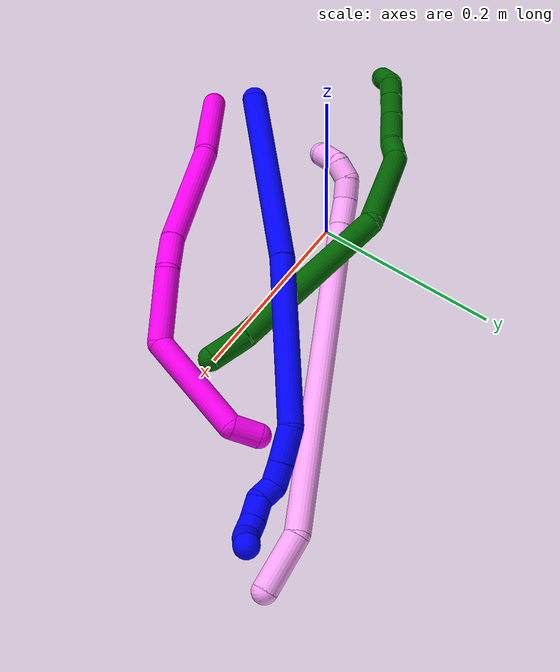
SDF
<sdf version="1.7">
 <world name="default">
  <model name="photoneo_s_sensor">
   <static>1</static>
   <pose>0 0 2 1.57079 1.57079 3.14159</pose>
   <link name="link">
    <inertial><mass>0.1</mass></inertial>
    <sensor name="sensor" type="depth">
     <update_rate>30</update_rate>
     <camera>
      <horizontal_fov>1.22</horizontal_fov>
      <image><width>1920</width><height>1200</height><format>B8G8R8</format></image>
      <clip><near>0.1</near><far>4</far></clip>
      <depth_camera><output>points</output></depth_camera>
     </camera>
     <plugin name="camera_plugin" filename="libgazebo_ros_depth_camera.so">
      <baseline>0.2</baseline>
      <alwaysOn>1</alwaysOn>
      <updateRate>0.0</updateRate>
      <cameraName>camera_ir</cameraName>
      <imageTopicName>/camera/color/image_raw</imageTopicName>
      <cameraInfoTopicName>/camera/color/camera_info</cameraInfoTopicName>
      <depthImageTopicName>/camera/depth/image_raw</depthImageTopicName>
      <depthImageCameraInfoTopicName>/camera/depth/camera_info</depthImageCameraInfoTopicName>
      <pointCloudTopicName>/camera/depth/points</pointCloudTopicName>
      <frameName>fr_optical</frameName>
      <pointCloudCutoff>0.1</pointCloudCutoff>
      <pointCloudCutoffMax>2.0</pointCloudCutoffMax>
      <distortionK1>0</distortionK1>
      <distortionK2>0</distortionK2>
      <distortionK3>0</distortionK3>
      <distortionT1>0</distortionT1>
      <distortionT2>0</distortionT2>
      <CxPrime>0</CxPrime>
      <Cx>0</Cx>
      <Cy>0</Cy>
      <focalLength>0</focalLength>
      <hackBaseline>0</hackBaseline>
     </plugin>
    </sensor>
   </link>
  </model>
  <model name="bin">
   <static>1</static>
   <link name="bottom">
    <collision name="collision-bottom">
     <pose>0 0 -0.01 0 -0 0</pose>
     <geometry><box><size>0.8 0.6 0.02</size></box></geometry>
     <surface>
      <friction><ode><mu>100</mu><mu2>100</mu2></ode></friction>
      <contact><collide_bitmask>65535</collide_bitmask></contact>
     </surface>
    </collision>
   </link>
   <link name="west_wall">
    <collision name="collision-west_wall">
     <pose>-0.41 0 0.1 0 -0 0</pose>
     <geometry><box><size>0.02 0.6 0.2</size></box></geometry>
     <surface>
      <friction><ode><mu>100</mu><mu2>100</mu2></ode></friction>
      <contact><collide_bitmask>65535</collide_bitmask></contact>
     </surface>
    </collision>
   </link>
   <link name="east_wall">
    <collision name="collision-east_wall">
     <pose>0.41 0 0.1 0 -0 0</pose>
     <geometry><box><size>0.02 0.6 0.2</size></box></geometry>
     <surface>
      <friction><ode><mu>100</mu><mu2>100</mu2></ode></friction>
      <contact><collide_bitmask>65535</collide_bitmask></contact>
     </surface>
    </collision>
   </link>
   <link name="south_wall">
    <collision name="collision-south_wall">
     <pose>0 -0.31 0.1 0 -0 0</pose>
     <geometry><box><size>0.8 0.02 0.2</size></box></geometry>
     <surface>
      <friction><ode><mu>100</mu><mu2>100</mu2></ode></friction>
      <contact><collide_bitmask>65535</collide_bitmask></contact>
     </surface>
    </collision>
   </link>
   <link name="north_wall">
    <collision name="collision-north_wall">
     <pose>0 0.31 0.1 0 -0 0</pose>
     <geometry><box><size>0.8 0.02 0.2</size></box></geometry>
     <surface>
      <friction><ode><mu>100</mu><mu2>100</mu2></ode></friction>
      <contact><collide_bitmask>65535</collide_bitmask></contact>
     </surface>
    </collision>
   </link>
  </model>
  <model name="1">
   <static>0</static>
   <link name="1">
    <collision name="collision-cylinder-e_1_1_4">
     <pose>0.009027 0.007822 0.093321 -0.083618 0.096097 -0.004023</pose>
     <geometry><cylinder><radius>0.0125</radius><length>0.188164</length></cylinder></geometry>
     <surface>
      <friction><ode><mu>1.16</mu><mu2>1.16</mu2><slip1>0</slip1><slip2>0</slip2></ode></friction>
      <contact><ode><kp>1e+06</kp><kd>1</kd><max_vel>0</max_vel><min_depth>0.001</min_depth></ode></contact>
     </surface>
    </collision>
    <visual name="visual-cylinder-e_1_1_4">
     <pose>0.009027 0.007822 0.093321 -0.083618 0.096097 -0.004023</pose>
     <geometry><cylinder><radius>0.0125</radius><length>0.188164</length></cylinder></geometry>
     <material><ambient>0 0 1 1</ambient></material>
    </visual>
    <collision name="collision-cylinder-e_2_4_5">
     <pose>0.025144 0.01138 0.271873 0.049971 0.082891 0.002073</pose>
     <geometry><cylinder><radius>0.0125</radius><length>0.171264</length></cylinder></geometry>
     <surface>
      <friction><ode><mu>1.16</mu><mu2>1.16</mu2><slip1>0</slip1><slip2>0</slip2></ode></friction>
      <contact><ode><kp>1e+06</kp><kd>1</kd><max_vel>0</max_vel><min_depth>0.001</min_depth></ode></contact>
     </surface>
    </collision>
    <visual name="visual-cylinder-e_2_4_5">
     <pose>0.025144 0.01138 0.271873 0.049971 0.082891 0.002073</pose>
     <geometry><cylinder><radius>0.0125</radius><length>0.171264</length></cylinder></geometry>
     <material><ambient>0 0 1 1</ambient></material>
    </visual>
    <collision name="collision-cylinder-e_3_5_6">
     <pose>0.032739 -2.8e-05 0.372824 0.426672 0.0292 0.006326</pose>
     <geometry><cylinder><radius>0.0125</radius><length>0.034551</length></cylinder></geometry>
     <surface>
      <friction><ode><mu>1.16</mu><mu2>1.16</mu2><slip1>0</slip1><slip2>0</slip2></ode></friction>
      <contact><ode><kp>1e+06</kp><kd>1</kd><max_vel>0</max_vel><min_depth>0.001</min_depth></ode></contact>
     </surface>
    </collision>
    <visual name="visual-cylinder-e_3_5_6">
     <pose>0.032739 -2.8e-05 0.372824 0.426672 0.0292 0.006326</pose>
     <geometry><cylinder><radius>0.0125</radius><length>0.034551</length></cylinder></geometry>
     <material><ambient>0 0 1 1</ambient></material>
    </visual>
    <collision name="collision-cylinder-e_4_6_7">
     <pose>0.033349 -0.012358 0.398567 0.477232 0.009438 0.002296</pose>
     <geometry><cylinder><radius>0.0125</radius><length>0.022568</length></cylinder></geometry>
     <surface>
      <friction><ode><mu>1.16</mu><mu2>1.16</mu2><slip1>0</slip1><slip2>0</slip2></ode></friction>
      <contact><ode><kp>1e+06</kp><kd>1</kd><max_vel>0</max_vel><min_depth>0.001</min_depth></ode></contact>
     </surface>
    </collision>
    <visual name="visual-cylinder-e_4_6_7">
     <pose>0.033349 -0.012358 0.398567 0.477232 0.009438 0.002296</pose>
     <geometry><cylinder><radius>0.0125</radius><length>0.022568</length></cylinder></geometry>
     <material><ambient>0 0 1 1</ambient></material>
    </visual>
    <collision name="collision-cylinder-e_5_7_8">
     <pose>0.026817 -0.02065 0.415784 0.407964 -0.702739 -0.151372</pose>
     <geometry><cylinder><radius>0.0125</radius><length>0.020543</length></cylinder></geometry>
     <surface>
      <friction><ode><mu>1.16</mu><mu2>1.16</mu2><slip1>0</slip1><slip2>0</slip2></ode></friction>
      <contact><ode><kp>1e+06</kp><kd>1</kd><max_vel>0</max_vel><min_depth>0.001</min_depth></ode></contact>
     </surface>
    </collision>
    <visual name="visual-cylinder-e_5_7_8">
     <pose>0.026817 -0.02065 0.415784 0.407964 -0.702739 -0.151372</pose>
     <geometry><cylinder><radius>0.0125</radius><length>0.020543</length></cylinder></geometry>
     <material><ambient>0 0 1 1</ambient></material>
    </visual>
    <collision name="collision-cylinder-e_6_8_9">
     <pose>0.017865 -0.026005 0.433398 0.212229 -0.213796 -0.022858</pose>
     <geometry><cylinder><radius>0.0125</radius><length>0.021813</length></cylinder></geometry>
     <surface>
      <friction><ode><mu>1.16</mu><mu2>1.16</mu2><slip1>0</slip1><slip2>0</slip2></ode></friction>
      <contact><ode><kp>1e+06</kp><kd>1</kd><max_vel>0</max_vel><min_depth>0.001</min_depth></ode></contact>
     </surface>
    </collision>
    <visual name="visual-cylinder-e_6_8_9">
     <pose>0.017865 -0.026005 0.433398 0.212229 -0.213796 -0.022858</pose>
     <geometry><cylinder><radius>0.0125</radius><length>0.021813</length></cylinder></geometry>
     <material><ambient>0 0 1 1</ambient></material>
    </visual>
    <collision name="collision-cylinder-e_7_9_10">
     <pose>0.010149 -0.027409 0.452307 -0.098649 -0.56447 0.028627</pose>
     <geometry><cylinder><radius>0.0125</radius><length>0.020196</length></cylinder></geometry>
     <surface>
      <friction><ode><mu>1.16</mu><mu2>1.16</mu2><slip1>0</slip1><slip2>0</slip2></ode></friction>
      <contact><ode><kp>1e+06</kp><kd>1</kd><max_vel>0</max_vel><min_depth>0.001</min_depth></ode></contact>
     </surface>
    </collision>
    <visual name="visual-cylinder-e_7_9_10">
     <pose>0.010149 -0.027409 0.452307 -0.098649 -0.56447 0.028627</pose>
     <geometry><cylinder><radius>0.0125</radius><length>0.020196</length></cylinder></geometry>
     <material><ambient>0 0 1 1</ambient></material>
    </visual>
    <collision name="collision-cylinder-e_8_10_2">
     <pose>-0.000929 -0.020665 0.467289 -0.738096 -0.574095 0.227364</pose>
     <geometry><cylinder><radius>0.0125</radius><length>0.020901</length></cylinder></geometry>
     <surface>
      <friction><ode><mu>1.16</mu><mu2>1.16</mu2><slip1>0</slip1><slip2>0</slip2></ode></friction>
      <contact><ode><kp>1e+06</kp><kd>1</kd><max_vel>0</max_vel><min_depth>0.001</min_depth></ode></contact>
     </surface>
    </collision>
    <visual name="visual-cylinder-e_8_10_2">
     <pose>-0.000929 -0.020665 0.467289 -0.738096 -0.574095 0.227364</pose>
     <geometry><cylinder><radius>0.0125</radius><length>0.020901</length></cylinder></geometry>
     <material><ambient>0 0 1 1</ambient></material>
    </visual>
    <collision name="collision-sphere-2">
     <pose>-0.006604 -0.01476 0.47378 0 -0 0</pose>
     <geometry><sphere><radius>0.0125</radius></sphere></geometry>
     <surface>
      <friction><ode><mu>1.16</mu><mu2>1.16</mu2><slip1>0</slip1><slip2>0</slip2></ode></friction>
      <contact><ode><kp>1e+06</kp><kd>1</kd><max_vel>0</max_vel><min_depth>0.001</min_depth></ode></contact>
     </surface>
    </collision>
    <visual name="visual-sphere-2">
     <pose>-0.006604 -0.01476 0.47378 0 -0 0</pose>
     <geometry><sphere><radius>0.0125</radius></sphere></geometry>
     <material><ambient>0 0 1 1</ambient></material>
    </visual>
    <collision name="collision-sphere-10">
     <pose>0.004746 -0.026569 0.460797 0 -0 0</pose>
     <geometry><sphere><radius>0.0125</radius></sphere></geometry>
     <surface>
      <friction><ode><mu>1.16</mu><mu2>1.16</mu2><slip1>0</slip1><slip2>0</slip2></ode></friction>
      <contact><ode><kp>1e+06</kp><kd>1</kd><max_vel>0</max_vel><min_depth>0.001</min_depth></ode></contact>
     </surface>
    </collision>
    <visual name="visual-sphere-10">
     <pose>0.004746 -0.026569 0.460797 0 -0 0</pose>
     <geometry><sphere><radius>0.0125</radius></sphere></geometry>
     <material><ambient>0 0 1 1</ambient></material>
    </visual>
    <collision name="collision-sphere-9">
     <pose>0.015551 -0.02825 0.443817 0 -0 0</pose>
     <geometry><sphere><radius>0.0125</radius></sphere></geometry>
     <surface>
      <friction><ode><mu>1.16</mu><mu2>1.16</mu2><slip1>0</slip1><slip2>0</slip2></ode></friction>
      <contact><ode><kp>1e+06</kp><kd>1</kd><max_vel>0</max_vel><min_depth>0.001</min_depth></ode></contact>
     </surface>
    </collision>
    <visual name="visual-sphere-9">
     <pose>0.015551 -0.02825 0.443817 0 -0 0</pose>
     <geometry><sphere><radius>0.0125</radius></sphere></geometry>
     <material><ambient>0 0 1 1</ambient></material>
    </visual>
    <collision name="collision-sphere-4">
     <pose>0.018054 0.015643 0.186642 0 -0 0</pose>
     <geometry><sphere><radius>0.0125</radius></sphere></geometry>
     <surface>
      <friction><ode><mu>1.16</mu><mu2>1.16</mu2><slip1>0</slip1><slip2>0</slip2></ode></friction>
      <contact><ode><kp>1e+06</kp><kd>1</kd><max_vel>0</max_vel><min_depth>0.001</min_depth></ode></contact>
     </surface>
    </collision>
    <visual name="visual-sphere-4">
     <pose>0.018054 0.015643 0.186642 0 -0 0</pose>
     <geometry><sphere><radius>0.0125</radius></sphere></geometry>
     <material><ambient>0 0 1 1</ambient></material>
    </visual>
    <collision name="collision-sphere-1">
     <geometry><sphere><radius>0.0125</radius></sphere></geometry>
     <surface>
      <friction><ode><mu>1.16</mu><mu2>1.16</mu2><slip1>0</slip1><slip2>0</slip2></ode></friction>
      <contact><ode><kp>1e+06</kp><kd>1</kd><max_vel>0</max_vel><min_depth>0.001</min_depth></ode></contact>
     </surface>
    </collision>
    <visual name="visual-sphere-1">
     <geometry><sphere><radius>0.0125</radius></sphere></geometry>
     <material><ambient>0 0 1 1</ambient></material>
    </visual>
    <collision name="collision-sphere-8">
     <pose>0.020179 -0.02376 0.422979 0 -0 0</pose>
     <geometry><sphere><radius>0.0125</radius></sphere></geometry>
     <surface>
      <friction><ode><mu>1.16</mu><mu2>1.16</mu2><slip1>0</slip1><slip2>0</slip2></ode></friction>
      <contact><ode><kp>1e+06</kp><kd>1</kd><max_vel>0</max_vel><min_depth>0.001</min_depth></ode></contact>
     </surface>
    </collision>
    <visual name="visual-sphere-8">
     <pose>0.020179 -0.02376 0.422979 0 -0 0</pose>
     <geometry><sphere><radius>0.0125</radius></sphere></geometry>
     <material><ambient>0 0 1 1</ambient></material>
    </visual>
    <collision name="collision-sphere-5">
     <pose>0.032234 0.007118 0.357104 0 -0 0</pose>
     <geometry><sphere><radius>0.0125</radius></sphere></geometry>
     <surface>
      <friction><ode><mu>1.16</mu><mu2>1.16</mu2><slip1>0</slip1><slip2>0</slip2></ode></friction>
      <contact><ode><kp>1e+06</kp><kd>1</kd><max_vel>0</max_vel><min_depth>0.001</min_depth></ode></contact>
     </surface>
    </collision>
    <visual name="visual-sphere-5">
     <pose>0.032234 0.007118 0.357104 0 -0 0</pose>
     <geometry><sphere><radius>0.0125</radius></sphere></geometry>
     <material><ambient>0 0 1 1</ambient></material>
    </visual>
    <collision name="collision-sphere-6">
     <pose>0.033243 -0.007175 0.388544 0 -0 0</pose>
     <geometry><sphere><radius>0.0125</radius></sphere></geometry>
     <surface>
      <friction><ode><mu>1.16</mu><mu2>1.16</mu2><slip1>0</slip1><slip2>0</slip2></ode></friction>
      <contact><ode><kp>1e+06</kp><kd>1</kd><max_vel>0</max_vel><min_depth>0.001</min_depth></ode></contact>
     </surface>
    </collision>
    <visual name="visual-sphere-6">
     <pose>0.033243 -0.007175 0.388544 0 -0 0</pose>
     <geometry><sphere><radius>0.0125</radius></sphere></geometry>
     <material><ambient>0 0 1 1</ambient></material>
    </visual>
    <collision name="collision-sphere-7">
     <pose>0.033456 -0.01754 0.40859 0 -0 0</pose>
     <geometry><sphere><radius>0.0125</radius></sphere></geometry>
     <surface>
      <friction><ode><mu>1.16</mu><mu2>1.16</mu2><slip1>0</slip1><slip2>0</slip2></ode></friction>
      <contact><ode><kp>1e+06</kp><kd>1</kd><max_vel>0</max_vel><min_depth>0.001</min_depth></ode></contact>
     </surface>
    </collision>
    <visual name="visual-sphere-7">
     <pose>0.033456 -0.01754 0.40859 0 -0 0</pose>
     <geometry><sphere><radius>0.0125</radius></sphere></geometry>
     <material><ambient>0 0 1 1</ambient></material>
    </visual>
    <inertial>
     <pose>0.01803 0.002328 0.245789 0 -0 0</pose>
     <mass>0.5</mass>
     <inertia>
      <ixx>0.000994</ixx>
      <ixy>0</ixy>
      <ixz>0</ixz>
      <iyy>0.000995</iyy>
      <iyz>0</iyz>
      <izz>-7.2e-05</izz>
     </inertia>
    </inertial>
   </link>
   <pose>-0.021336 -0.105927 0.123549 1.77062 0.829461 2.36517</pose>
  </model>
  <model name="4">
   <static>0</static>
   <link name="4">
    <collision name="collision-cylinder-e_1_1_4">
     <pose>-0.027703 -0.007432 0.003519 1.12859 -1.28226 -0.882603</pose>
     <geometry><cylinder><radius>0.0125</radius><length>0.057794</length></cylinder></geometry>
     <surface>
      <friction><ode><mu>1.16</mu><mu2>1.16</mu2><slip1>0</slip1><slip2>0</slip2></ode></friction>
      <contact><ode><kp>1e+06</kp><kd>1</kd><max_vel>0</max_vel><min_depth>0.001</min_depth></ode></contact>
     </surface>
    </collision>
    <visual name="visual-cylinder-e_1_1_4">
     <pose>-0.027703 -0.007432 0.003519 1.12859 -1.28226 -0.882603</pose>
     <geometry><cylinder><radius>0.0125</radius><length>0.057794</length></cylinder></geometry>
     <material><ambient>1 0.65098 0.996078 1</ambient></material>
    </visual>
    <collision name="collision-cylinder-e_2_4_5">
     <pose>-0.1976 -0.090966 -0.042426 2.14714 -1.00268 -1.58059</pose>
     <geometry><cylinder><radius>0.0125</radius><length>0.337387</length></cylinder></geometry>
     <surface>
      <friction><ode><mu>1.16</mu><mu2>1.16</mu2><slip1>0</slip1><slip2>0</slip2></ode></friction>
      <contact><ode><kp>1e+06</kp><kd>1</kd><max_vel>0</max_vel><min_depth>0.001</min_depth></ode></contact>
     </surface>
    </collision>
    <visual name="visual-cylinder-e_2_4_5">
     <pose>-0.1976 -0.090966 -0.042426 2.14714 -1.00268 -1.58059</pose>
     <geometry><cylinder><radius>0.0125</radius><length>0.337387</length></cylinder></geometry>
     <material><ambient>1 0.65098 0.996078 1</ambient></material>
    </visual>
    <collision name="collision-cylinder-e_3_5_6">
     <pose>-0.353307 -0.174993 -0.094354 1.8723 -1.01997 -1.29937</pose>
     <geometry><cylinder><radius>0.0125</radius><length>0.031715</length></cylinder></geometry>
     <surface>
      <friction><ode><mu>1.16</mu><mu2>1.16</mu2><slip1>0</slip1><slip2>0</slip2></ode></friction>
      <contact><ode><kp>1e+06</kp><kd>1</kd><max_vel>0</max_vel><min_depth>0.001</min_depth></ode></contact>
     </surface>
    </collision>
    <visual name="visual-cylinder-e_3_5_6">
     <pose>-0.353307 -0.174993 -0.094354 1.8723 -1.01997 -1.29937</pose>
     <geometry><cylinder><radius>0.0125</radius><length>0.031715</length></cylinder></geometry>
     <material><ambient>1 0.65098 0.996078 1</ambient></material>
    </visual>
    <collision name="collision-cylinder-e_4_6_7">
     <pose>-0.375513 -0.190353 -0.096505 1.52861 -0.862943 -0.831321</pose>
     <geometry><cylinder><radius>0.0125</radius><length>0.022889</length></cylinder></geometry>
     <surface>
      <friction><ode><mu>1.16</mu><mu2>1.16</mu2><slip1>0</slip1><slip2>0</slip2></ode></friction>
      <contact><ode><kp>1e+06</kp><kd>1</kd><max_vel>0</max_vel><min_depth>0.001</min_depth></ode></contact>
     </surface>
    </collision>
    <visual name="visual-cylinder-e_4_6_7">
     <pose>-0.375513 -0.190353 -0.096505 1.52861 -0.862943 -0.831321</pose>
     <geometry><cylinder><radius>0.0125</radius><length>0.022889</length></cylinder></geometry>
     <material><ambient>1 0.65098 0.996078 1</ambient></material>
    </visual>
    <collision name="collision-cylinder-e_5_7_8">
     <pose>-0.387761 -0.206653 -0.09948 1.92609 -0.359391 -0.510906</pose>
     <geometry><cylinder><radius>0.0125</radius><length>0.020203</length></cylinder></geometry>
     <surface>
      <friction><ode><mu>1.16</mu><mu2>1.16</mu2><slip1>0</slip1><slip2>0</slip2></ode></friction>
      <contact><ode><kp>1e+06</kp><kd>1</kd><max_vel>0</max_vel><min_depth>0.001</min_depth></ode></contact>
     </surface>
    </collision>
    <visual name="visual-cylinder-e_5_7_8">
     <pose>-0.387761 -0.206653 -0.09948 1.92609 -0.359391 -0.510906</pose>
     <geometry><cylinder><radius>0.0125</radius><length>0.020203</length></cylinder></geometry>
     <material><ambient>1 0.65098 0.996078 1</ambient></material>
    </visual>
    <collision name="collision-cylinder-e_6_8_2">
     <pose>-0.394359 -0.22328 -0.115246 2.58502 -0.204373 -0.689204</pose>
     <geometry><cylinder><radius>0.0125</radius><length>0.030013</length></cylinder></geometry>
     <surface>
      <friction><ode><mu>1.16</mu><mu2>1.16</mu2><slip1>0</slip1><slip2>0</slip2></ode></friction>
      <contact><ode><kp>1e+06</kp><kd>1</kd><max_vel>0</max_vel><min_depth>0.001</min_depth></ode></contact>
     </surface>
    </collision>
    <visual name="visual-cylinder-e_6_8_2">
     <pose>-0.394359 -0.22328 -0.115246 2.58502 -0.204373 -0.689204</pose>
     <geometry><cylinder><radius>0.0125</radius><length>0.030013</length></cylinder></geometry>
     <material><ambient>1 0.65098 0.996078 1</ambient></material>
    </visual>
    <collision name="collision-sphere-2">
     <pose>-0.397405 -0.231043 -0.127722 0 -0 0</pose>
     <geometry><sphere><radius>0.0125</radius></sphere></geometry>
     <surface>
      <friction><ode><mu>1.16</mu><mu2>1.16</mu2><slip1>0</slip1><slip2>0</slip2></ode></friction>
      <contact><ode><kp>1e+06</kp><kd>1</kd><max_vel>0</max_vel><min_depth>0.001</min_depth></ode></contact>
     </surface>
    </collision>
    <visual name="visual-sphere-2">
     <pose>-0.397405 -0.231043 -0.127722 0 -0 0</pose>
     <geometry><sphere><radius>0.0125</radius></sphere></geometry>
     <material><ambient>1 0.65098 0.996078 1</ambient></material>
    </visual>
    <collision name="collision-sphere-4">
     <pose>-0.055405 -0.014863 0.007037 0 -0 0</pose>
     <geometry><sphere><radius>0.0125</radius></sphere></geometry>
     <surface>
      <friction><ode><mu>1.16</mu><mu2>1.16</mu2><slip1>0</slip1><slip2>0</slip2></ode></friction>
      <contact><ode><kp>1e+06</kp><kd>1</kd><max_vel>0</max_vel><min_depth>0.001</min_depth></ode></contact>
     </surface>
    </collision>
    <visual name="visual-sphere-4">
     <pose>-0.055405 -0.014863 0.007037 0 -0 0</pose>
     <geometry><sphere><radius>0.0125</radius></sphere></geometry>
     <material><ambient>1 0.65098 0.996078 1</ambient></material>
    </visual>
    <collision name="collision-sphere-1">
     <geometry><sphere><radius>0.0125</radius></sphere></geometry>
     <surface>
      <friction><ode><mu>1.16</mu><mu2>1.16</mu2><slip1>0</slip1><slip2>0</slip2></ode></friction>
      <contact><ode><kp>1e+06</kp><kd>1</kd><max_vel>0</max_vel><min_depth>0.001</min_depth></ode></contact>
     </surface>
    </collision>
    <visual name="visual-sphere-1">
     <geometry><sphere><radius>0.0125</radius></sphere></geometry>
     <material><ambient>1 0.65098 0.996078 1</ambient></material>
    </visual>
    <collision name="collision-sphere-8">
     <pose>-0.391314 -0.215518 -0.10277 0 -0 0</pose>
     <geometry><sphere><radius>0.0125</radius></sphere></geometry>
     <surface>
      <friction><ode><mu>1.16</mu><mu2>1.16</mu2><slip1>0</slip1><slip2>0</slip2></ode></friction>
      <contact><ode><kp>1e+06</kp><kd>1</kd><max_vel>0</max_vel><min_depth>0.001</min_depth></ode></contact>
     </surface>
    </collision>
    <visual name="visual-sphere-8">
     <pose>-0.391314 -0.215518 -0.10277 0 -0 0</pose>
     <geometry><sphere><radius>0.0125</radius></sphere></geometry>
     <material><ambient>1 0.65098 0.996078 1</ambient></material>
    </visual>
    <collision name="collision-sphere-5">
     <pose>-0.339794 -0.167068 -0.091889 0 -0 0</pose>
     <geometry><sphere><radius>0.0125</radius></sphere></geometry>
     <surface>
      <friction><ode><mu>1.16</mu><mu2>1.16</mu2><slip1>0</slip1><slip2>0</slip2></ode></friction>
      <contact><ode><kp>1e+06</kp><kd>1</kd><max_vel>0</max_vel><min_depth>0.001</min_depth></ode></contact>
     </surface>
    </collision>
    <visual name="visual-sphere-5">
     <pose>-0.339794 -0.167068 -0.091889 0 -0 0</pose>
     <geometry><sphere><radius>0.0125</radius></sphere></geometry>
     <material><ambient>1 0.65098 0.996078 1</ambient></material>
    </visual>
    <collision name="collision-sphere-6">
     <pose>-0.366819 -0.182918 -0.096819 0 -0 0</pose>
     <geometry><sphere><radius>0.0125</radius></sphere></geometry>
     <surface>
      <friction><ode><mu>1.16</mu><mu2>1.16</mu2><slip1>0</slip1><slip2>0</slip2></ode></friction>
      <contact><ode><kp>1e+06</kp><kd>1</kd><max_vel>0</max_vel><min_depth>0.001</min_depth></ode></contact>
     </surface>
    </collision>
    <visual name="visual-sphere-6">
     <pose>-0.366819 -0.182918 -0.096819 0 -0 0</pose>
     <geometry><sphere><radius>0.0125</radius></sphere></geometry>
     <material><ambient>1 0.65098 0.996078 1</ambient></material>
    </visual>
    <collision name="collision-sphere-7">
     <pose>-0.384208 -0.197787 -0.096191 0 -0 0</pose>
     <geometry><sphere><radius>0.0125</radius></sphere></geometry>
     <surface>
      <friction><ode><mu>1.16</mu><mu2>1.16</mu2><slip1>0</slip1><slip2>0</slip2></ode></friction>
      <contact><ode><kp>1e+06</kp><kd>1</kd><max_vel>0</max_vel><min_depth>0.001</min_depth></ode></contact>
     </surface>
    </collision>
    <visual name="visual-sphere-7">
     <pose>-0.384208 -0.197787 -0.096191 0 -0 0</pose>
     <geometry><sphere><radius>0.0125</radius></sphere></geometry>
     <material><ambient>1 0.65098 0.996078 1</ambient></material>
    </visual>
    <inertial>
     <pose>-0.215477 -0.103806 -0.049561 0 -0 0</pose>
     <mass>0.5</mass>
     <inertia>
      <ixx>-0.001778</ixx>
      <ixy>0</ixy>
      <ixz>0</ixz>
      <iyy>0.00055</iyy>
      <iyz>0</iyz>
      <izz>0.004183</izz>
     </inertia>
    </inertial>
   </link>
   <pose>0.373601 0.190107 0.011351 -0.642236 0.037807 -0.086022</pose>
  </model>
  <model name="6">
   <static>0</static>
   <link name="6">
    <collision name="collision-cylinder-e_1_1_4">
     <pose>-0.009167 -0.003784 0.017733 0.210263 -0.468089 -0.050305</pose>
     <geometry><cylinder><radius>0.0125</radius><length>0.040635</length></cylinder></geometry>
     <surface>
      <friction><ode><mu>1.16</mu><mu2>1.16</mu2><slip1>0</slip1><slip2>0</slip2></ode></friction>
      <contact><ode><kp>1e+06</kp><kd>1</kd><max_vel>0</max_vel><min_depth>0.001</min_depth></ode></contact>
     </surface>
    </collision>
    <visual name="visual-cylinder-e_1_1_4">
     <pose>-0.009167 -0.003784 0.017733 0.210263 -0.468089 -0.050305</pose>
     <geometry><cylinder><radius>0.0125</radius><length>0.040635</length></cylinder></geometry>
     <material><ambient>0 0.392157 0.003922 1</ambient></material>
    </visual>
    <collision name="collision-cylinder-e_2_4_5">
     <pose>-0.069355 -0.027506 0.105167 0.278593 -0.613248 -0.088722</pose>
     <geometry><cylinder><radius>0.0125</radius><length>0.177302</length></cylinder></geometry>
     <surface>
      <friction><ode><mu>1.16</mu><mu2>1.16</mu2><slip1>0</slip1><slip2>0</slip2></ode></friction>
      <contact><ode><kp>1e+06</kp><kd>1</kd><max_vel>0</max_vel><min_depth>0.001</min_depth></ode></contact>
     </surface>
    </collision>
    <visual name="visual-cylinder-e_2_4_5">
     <pose>-0.069355 -0.027506 0.105167 0.278593 -0.613248 -0.088722</pose>
     <geometry><cylinder><radius>0.0125</radius><length>0.177302</length></cylinder></geometry>
     <material><ambient>0 0.392157 0.003922 1</ambient></material>
    </visual>
    <collision name="collision-cylinder-e_3_5_6">
     <pose>-0.181019 -0.033202 0.200767 -0.502742 -1.11732 0.31833</pose>
     <geometry><cylinder><radius>0.0125</radius><length>0.134925</length></cylinder></geometry>
     <surface>
      <friction><ode><mu>1.16</mu><mu2>1.16</mu2><slip1>0</slip1><slip2>0</slip2></ode></friction>
      <contact><ode><kp>1e+06</kp><kd>1</kd><max_vel>0</max_vel><min_depth>0.001</min_depth></ode></contact>
     </surface>
    </collision>
    <visual name="visual-cylinder-e_3_5_6">
     <pose>-0.181019 -0.033202 0.200767 -0.502742 -1.11732 0.31833</pose>
     <geometry><cylinder><radius>0.0125</radius><length>0.134925</length></cylinder></geometry>
     <material><ambient>0 0.392157 0.003922 1</ambient></material>
    </visual>
    <collision name="collision-cylinder-e_4_6_7">
     <pose>-0.253441 -0.019443 0.226544 1.81689 -1.52868 -1.77584</pose>
     <geometry><cylinder><radius>0.0125</radius><length>0.023577</length></cylinder></geometry>
     <surface>
      <friction><ode><mu>1.16</mu><mu2>1.16</mu2><slip1>0</slip1><slip2>0</slip2></ode></friction>
      <contact><ode><kp>1e+06</kp><kd>1</kd><max_vel>0</max_vel><min_depth>0.001</min_depth></ode></contact>
     </surface>
    </collision>
    <visual name="visual-cylinder-e_4_6_7">
     <pose>-0.253441 -0.019443 0.226544 1.81689 -1.52868 -1.77584</pose>
     <geometry><cylinder><radius>0.0125</radius><length>0.023577</length></cylinder></geometry>
     <material><ambient>0 0.392157 0.003922 1</ambient></material>
    </visual>
    <collision name="collision-cylinder-e_5_7_8">
     <pose>-0.290684 -0.015143 0.23175 -0.731433 -1.29677 0.564774</pose>
     <geometry><cylinder><radius>0.0125</radius><length>0.052903</length></cylinder></geometry>
     <surface>
      <friction><ode><mu>1.16</mu><mu2>1.16</mu2><slip1>0</slip1><slip2>0</slip2></ode></friction>
      <contact><ode><kp>1e+06</kp><kd>1</kd><max_vel>0</max_vel><min_depth>0.001</min_depth></ode></contact>
     </surface>
    </collision>
    <visual name="visual-cylinder-e_5_7_8">
     <pose>-0.290684 -0.015143 0.23175 -0.731433 -1.29677 0.564774</pose>
     <geometry><cylinder><radius>0.0125</radius><length>0.052903</length></cylinder></geometry>
     <material><ambient>0 0.392157 0.003922 1</ambient></material>
    </visual>
    <collision name="collision-cylinder-e_6_8_9">
     <pose>-0.33039 -0.013734 0.239303 0.987334 -1.2944 -0.772535</pose>
     <geometry><cylinder><radius>0.0125</radius><length>0.029606</length></cylinder></geometry>
     <surface>
      <friction><ode><mu>1.16</mu><mu2>1.16</mu2><slip1>0</slip1><slip2>0</slip2></ode></friction>
      <contact><ode><kp>1e+06</kp><kd>1</kd><max_vel>0</max_vel><min_depth>0.001</min_depth></ode></contact>
     </surface>
    </collision>
    <visual name="visual-cylinder-e_6_8_9">
     <pose>-0.33039 -0.013734 0.239303 0.987334 -1.2944 -0.772535</pose>
     <geometry><cylinder><radius>0.0125</radius><length>0.029606</length></cylinder></geometry>
     <material><ambient>0 0.392157 0.003922 1</ambient></material>
    </visual>
    <collision name="collision-cylinder-e_7_9_10">
     <pose>-0.35452 -0.019707 0.24303 1.04755 -1.27584 -0.809112</pose>
     <geometry><cylinder><radius>0.0125</radius><length>0.020672</length></cylinder></geometry>
     <surface>
      <friction><ode><mu>1.16</mu><mu2>1.16</mu2><slip1>0</slip1><slip2>0</slip2></ode></friction>
      <contact><ode><kp>1e+06</kp><kd>1</kd><max_vel>0</max_vel><min_depth>0.001</min_depth></ode></contact>
     </surface>
    </collision>
    <visual name="visual-cylinder-e_7_9_10">
     <pose>-0.35452 -0.019707 0.24303 1.04755 -1.27584 -0.809112</pose>
     <geometry><cylinder><radius>0.0125</radius><length>0.020672</length></cylinder></geometry>
     <material><ambient>0 0.392157 0.003922 1</ambient></material>
    </visual>
    <collision name="collision-cylinder-e_8_10_2">
     <pose>-0.373634 -0.019067 0.241661 -2.29515 -1.13185 1.90798</pose>
     <geometry><cylinder><radius>0.0125</radius><length>0.020381</length></cylinder></geometry>
     <surface>
      <friction><ode><mu>1.16</mu><mu2>1.16</mu2><slip1>0</slip1><slip2>0</slip2></ode></friction>
      <contact><ode><kp>1e+06</kp><kd>1</kd><max_vel>0</max_vel><min_depth>0.001</min_depth></ode></contact>
     </surface>
    </collision>
    <visual name="visual-cylinder-e_8_10_2">
     <pose>-0.373634 -0.019067 0.241661 -2.29515 -1.13185 1.90798</pose>
     <geometry><cylinder><radius>0.0125</radius><length>0.020381</length></cylinder></geometry>
     <material><ambient>0 0.392157 0.003922 1</ambient></material>
    </visual>
    <collision name="collision-sphere-2">
     <pose>-0.382859 -0.015823 0.238792 0 -0 0</pose>
     <geometry><sphere><radius>0.0125</radius></sphere></geometry>
     <surface>
      <friction><ode><mu>1.16</mu><mu2>1.16</mu2><slip1>0</slip1><slip2>0</slip2></ode></friction>
      <contact><ode><kp>1e+06</kp><kd>1</kd><max_vel>0</max_vel><min_depth>0.001</min_depth></ode></contact>
     </surface>
    </collision>
    <visual name="visual-sphere-2">
     <pose>-0.382859 -0.015823 0.238792 0 -0 0</pose>
     <geometry><sphere><radius>0.0125</radius></sphere></geometry>
     <material><ambient>0 0.392157 0.003922 1</ambient></material>
    </visual>
    <collision name="collision-sphere-10">
     <pose>-0.36441 -0.02231 0.244531 0 -0 0</pose>
     <geometry><sphere><radius>0.0125</radius></sphere></geometry>
     <surface>
      <friction><ode><mu>1.16</mu><mu2>1.16</mu2><slip1>0</slip1><slip2>0</slip2></ode></friction>
      <contact><ode><kp>1e+06</kp><kd>1</kd><max_vel>0</max_vel><min_depth>0.001</min_depth></ode></contact>
     </surface>
    </collision>
    <visual name="visual-sphere-10">
     <pose>-0.36441 -0.02231 0.244531 0 -0 0</pose>
     <geometry><sphere><radius>0.0125</radius></sphere></geometry>
     <material><ambient>0 0.392157 0.003922 1</ambient></material>
    </visual>
    <collision name="collision-sphere-9">
     <pose>-0.344631 -0.017105 0.241528 0 -0 0</pose>
     <geometry><sphere><radius>0.0125</radius></sphere></geometry>
     <surface>
      <friction><ode><mu>1.16</mu><mu2>1.16</mu2><slip1>0</slip1><slip2>0</slip2></ode></friction>
      <contact><ode><kp>1e+06</kp><kd>1</kd><max_vel>0</max_vel><min_depth>0.001</min_depth></ode></contact>
     </surface>
    </collision>
    <visual name="visual-sphere-9">
     <pose>-0.344631 -0.017105 0.241528 0 -0 0</pose>
     <geometry><sphere><radius>0.0125</radius></sphere></geometry>
     <material><ambient>0 0.392157 0.003922 1</ambient></material>
    </visual>
    <collision name="collision-sphere-4">
     <pose>-0.018334 -0.007569 0.035465 0 -0 0</pose>
     <geometry><sphere><radius>0.0125</radius></sphere></geometry>
     <surface>
      <friction><ode><mu>1.16</mu><mu2>1.16</mu2><slip1>0</slip1><slip2>0</slip2></ode></friction>
      <contact><ode><kp>1e+06</kp><kd>1</kd><max_vel>0</max_vel><min_depth>0.001</min_depth></ode></contact>
     </surface>
    </collision>
    <visual name="visual-sphere-4">
     <pose>-0.018334 -0.007569 0.035465 0 -0 0</pose>
     <geometry><sphere><radius>0.0125</radius></sphere></geometry>
     <material><ambient>0 0.392157 0.003922 1</ambient></material>
    </visual>
    <collision name="collision-sphere-1">
     <geometry><sphere><radius>0.0125</radius></sphere></geometry>
     <surface>
      <friction><ode><mu>1.16</mu><mu2>1.16</mu2><slip1>0</slip1><slip2>0</slip2></ode></friction>
      <contact><ode><kp>1e+06</kp><kd>1</kd><max_vel>0</max_vel><min_depth>0.001</min_depth></ode></contact>
     </surface>
    </collision>
    <visual name="visual-sphere-1">
     <geometry><sphere><radius>0.0125</radius></sphere></geometry>
     <material><ambient>0 0.392157 0.003922 1</ambient></material>
    </visual>
    <collision name="collision-sphere-8">
     <pose>-0.316149 -0.010362 0.237077 0 -0 0</pose>
     <geometry><sphere><radius>0.0125</radius></sphere></geometry>
     <surface>
      <friction><ode><mu>1.16</mu><mu2>1.16</mu2><slip1>0</slip1><slip2>0</slip2></ode></friction>
      <contact><ode><kp>1e+06</kp><kd>1</kd><max_vel>0</max_vel><min_depth>0.001</min_depth></ode></contact>
     </surface>
    </collision>
    <visual name="visual-sphere-8">
     <pose>-0.316149 -0.010362 0.237077 0 -0 0</pose>
     <geometry><sphere><radius>0.0125</radius></sphere></geometry>
     <material><ambient>0 0.392157 0.003922 1</ambient></material>
    </visual>
    <collision name="collision-sphere-5">
     <pose>-0.120375 -0.047443 0.174869 0 -0 0</pose>
     <geometry><sphere><radius>0.0125</radius></sphere></geometry>
     <surface>
      <friction><ode><mu>1.16</mu><mu2>1.16</mu2><slip1>0</slip1><slip2>0</slip2></ode></friction>
      <contact><ode><kp>1e+06</kp><kd>1</kd><max_vel>0</max_vel><min_depth>0.001</min_depth></ode></contact>
     </surface>
    </collision>
    <visual name="visual-sphere-5">
     <pose>-0.120375 -0.047443 0.174869 0 -0 0</pose>
     <geometry><sphere><radius>0.0125</radius></sphere></geometry>
     <material><ambient>0 0.392157 0.003922 1</ambient></material>
    </visual>
    <collision name="collision-sphere-6">
     <pose>-0.241663 -0.018962 0.226665 0 -0 0</pose>
     <geometry><sphere><radius>0.0125</radius></sphere></geometry>
     <surface>
      <friction><ode><mu>1.16</mu><mu2>1.16</mu2><slip1>0</slip1><slip2>0</slip2></ode></friction>
      <contact><ode><kp>1e+06</kp><kd>1</kd><max_vel>0</max_vel><min_depth>0.001</min_depth></ode></contact>
     </surface>
    </collision>
    <visual name="visual-sphere-6">
     <pose>-0.241663 -0.018962 0.226665 0 -0 0</pose>
     <geometry><sphere><radius>0.0125</radius></sphere></geometry>
     <material><ambient>0 0.392157 0.003922 1</ambient></material>
    </visual>
    <collision name="collision-sphere-7">
     <pose>-0.265219 -0.019925 0.226423 0 -0 0</pose>
     <geometry><sphere><radius>0.0125</radius></sphere></geometry>
     <surface>
      <friction><ode><mu>1.16</mu><mu2>1.16</mu2><slip1>0</slip1><slip2>0</slip2></ode></friction>
      <contact><ode><kp>1e+06</kp><kd>1</kd><max_vel>0</max_vel><min_depth>0.001</min_depth></ode></contact>
     </surface>
    </collision>
    <visual name="visual-sphere-7">
     <pose>-0.265219 -0.019925 0.226423 0 -0 0</pose>
     <geometry><sphere><radius>0.0125</radius></sphere></geometry>
     <material><ambient>0 0.392157 0.003922 1</ambient></material>
    </visual>
    <inertial>
     <pose>-0.166343 -0.023945 0.162182 0 -0 0</pose>
     <mass>0.5</mass>
     <inertia>
      <ixx>0.000448</ixx>
      <ixy>0</ixy>
      <ixz>0</ixz>
      <iyy>0.000685</iyy>
      <iyz>0</iyz>
      <izz>0.000565</izz>
     </inertia>
    </inertial>
   </link>
   <pose>0.225674 0.019841 0.055654 -1.64284 -0.111929 0.761566</pose>
  </model>
  <model name="10">
   <static>0</static>
   <link name="10">
    <collision name="collision-cylinder-e_1_1_4">
     <pose>0.00257 -0.006531 0.061953 0.105035 0.041224 0.002167</pose>
     <geometry><cylinder><radius>0.0125</radius><length>0.124699</length></cylinder></geometry>
     <surface>
      <friction><ode><mu>1.16</mu><mu2>1.16</mu2><slip1>0</slip1><slip2>0</slip2></ode></friction>
      <contact><ode><kp>1e+06</kp><kd>1</kd><max_vel>0</max_vel><min_depth>0.001</min_depth></ode></contact>
     </surface>
    </collision>
    <visual name="visual-cylinder-e_1_1_4">
     <pose>0.00257 -0.006531 0.061953 0.105035 0.041224 0.002167</pose>
     <geometry><cylinder><radius>0.0125</radius><length>0.124699</length></cylinder></geometry>
     <material><ambient>1 0 0.964706 1</ambient></material>
    </visual>
    <collision name="collision-cylinder-e_2_4_5">
     <pose>0.028681 -0.008722 0.179083 -0.078507 0.402166 -0.016011</pose>
     <geometry><cylinder><radius>0.0125</radius><length>0.120292</length></cylinder></geometry>
     <surface>
      <friction><ode><mu>1.16</mu><mu2>1.16</mu2><slip1>0</slip1><slip2>0</slip2></ode></friction>
      <contact><ode><kp>1e+06</kp><kd>1</kd><max_vel>0</max_vel><min_depth>0.001</min_depth></ode></contact>
     </surface>
    </collision>
    <visual name="visual-cylinder-e_2_4_5">
     <pose>0.028681 -0.008722 0.179083 -0.078507 0.402166 -0.016011</pose>
     <geometry><cylinder><radius>0.0125</radius><length>0.120292</length></cylinder></geometry>
     <material><ambient>1 0 0.964706 1</ambient></material>
    </visual>
    <collision name="collision-cylinder-e_3_5_6">
     <pose>0.057288 -0.001079 0.252719 -0.177036 0.26382 -0.02355</pose>
     <geometry><cylinder><radius>0.0125</radius><length>0.038848</length></cylinder></geometry>
     <surface>
      <friction><ode><mu>1.16</mu><mu2>1.16</mu2><slip1>0</slip1><slip2>0</slip2></ode></friction>
      <contact><ode><kp>1e+06</kp><kd>1</kd><max_vel>0</max_vel><min_depth>0.001</min_depth></ode></contact>
     </surface>
    </collision>
    <visual name="visual-cylinder-e_3_5_6">
     <pose>0.057288 -0.001079 0.252719 -0.177036 0.26382 -0.02355</pose>
     <geometry><cylinder><radius>0.0125</radius><length>0.038848</length></cylinder></geometry>
     <material><ambient>1 0 0.964706 1</ambient></material>
    </visual>
    <collision name="collision-cylinder-e_4_6_7">
     <pose>0.077917 0.018625 0.301426 -0.496849 0.424784 -0.109294</pose>
     <geometry><cylinder><radius>0.0125</radius><length>0.075529</length></cylinder></geometry>
     <surface>
      <friction><ode><mu>1.16</mu><mu2>1.16</mu2><slip1>0</slip1><slip2>0</slip2></ode></friction>
      <contact><ode><kp>1e+06</kp><kd>1</kd><max_vel>0</max_vel><min_depth>0.001</min_depth></ode></contact>
     </surface>
    </collision>
    <visual name="visual-cylinder-e_4_6_7">
     <pose>0.077917 0.018625 0.301426 -0.496849 0.424784 -0.109294</pose>
     <geometry><cylinder><radius>0.0125</radius><length>0.075529</length></cylinder></geometry>
     <material><ambient>1 0 0.964706 1</ambient></material>
    </visual>
    <collision name="collision-cylinder-e_5_7_8">
     <pose>0.076596 0.070062 0.371053 -0.727093 -0.31 0.118756</pose>
     <geometry><cylinder><radius>0.0125</radius><length>0.110695</length></cylinder></geometry>
     <surface>
      <friction><ode><mu>1.16</mu><mu2>1.16</mu2><slip1>0</slip1><slip2>0</slip2></ode></friction>
      <contact><ode><kp>1e+06</kp><kd>1</kd><max_vel>0</max_vel><min_depth>0.001</min_depth></ode></contact>
     </surface>
    </collision>
    <visual name="visual-cylinder-e_5_7_8">
     <pose>0.076596 0.070062 0.371053 -0.727093 -0.31 0.118756</pose>
     <geometry><cylinder><radius>0.0125</radius><length>0.110695</length></cylinder></geometry>
     <material><ambient>1 0 0.964706 1</ambient></material>
    </visual>
    <collision name="collision-cylinder-e_6_8_2">
     <pose>0.051815 0.117811 0.410698 -1.54992 -0.55574 0.544823</pose>
     <geometry><cylinder><radius>0.0125</radius><length>0.029937</length></cylinder></geometry>
     <surface>
      <friction><ode><mu>1.16</mu><mu2>1.16</mu2><slip1>0</slip1><slip2>0</slip2></ode></friction>
      <contact><ode><kp>1e+06</kp><kd>1</kd><max_vel>0</max_vel><min_depth>0.001</min_depth></ode></contact>
     </surface>
    </collision>
    <visual name="visual-cylinder-e_6_8_2">
     <pose>0.051815 0.117811 0.410698 -1.54992 -0.55574 0.544823</pose>
     <geometry><cylinder><radius>0.0125</radius><length>0.029937</length></cylinder></geometry>
     <material><ambient>1 0 0.964706 1</ambient></material>
    </visual>
    <collision name="collision-sphere-2">
     <pose>0.043918 0.130524 0.410964 0 -0 0</pose>
     <geometry><sphere><radius>0.0125</radius></sphere></geometry>
     <surface>
      <friction><ode><mu>1.16</mu><mu2>1.16</mu2><slip1>0</slip1><slip2>0</slip2></ode></friction>
      <contact><ode><kp>1e+06</kp><kd>1</kd><max_vel>0</max_vel><min_depth>0.001</min_depth></ode></contact>
     </surface>
    </collision>
    <visual name="visual-sphere-2">
     <pose>0.043918 0.130524 0.410964 0 -0 0</pose>
     <geometry><sphere><radius>0.0125</radius></sphere></geometry>
     <material><ambient>1 0 0.964706 1</ambient></material>
    </visual>
    <collision name="collision-sphere-4">
     <pose>0.005139 -0.013063 0.123906 0 -0 0</pose>
     <geometry><sphere><radius>0.0125</radius></sphere></geometry>
     <surface>
      <friction><ode><mu>1.16</mu><mu2>1.16</mu2><slip1>0</slip1><slip2>0</slip2></ode></friction>
      <contact><ode><kp>1e+06</kp><kd>1</kd><max_vel>0</max_vel><min_depth>0.001</min_depth></ode></contact>
     </surface>
    </collision>
    <visual name="visual-sphere-4">
     <pose>0.005139 -0.013063 0.123906 0 -0 0</pose>
     <geometry><sphere><radius>0.0125</radius></sphere></geometry>
     <material><ambient>1 0 0.964706 1</ambient></material>
    </visual>
    <collision name="collision-sphere-1">
     <geometry><sphere><radius>0.0125</radius></sphere></geometry>
     <surface>
      <friction><ode><mu>1.16</mu><mu2>1.16</mu2><slip1>0</slip1><slip2>0</slip2></ode></friction>
      <contact><ode><kp>1e+06</kp><kd>1</kd><max_vel>0</max_vel><min_depth>0.001</min_depth></ode></contact>
     </surface>
    </collision>
    <visual name="visual-sphere-1">
     <geometry><sphere><radius>0.0125</radius></sphere></geometry>
     <material><ambient>1 0 0.964706 1</ambient></material>
    </visual>
    <collision name="collision-sphere-8">
     <pose>0.059712 0.105098 0.410433 0 -0 0</pose>
     <geometry><sphere><radius>0.0125</radius></sphere></geometry>
     <surface>
      <friction><ode><mu>1.16</mu><mu2>1.16</mu2><slip1>0</slip1><slip2>0</slip2></ode></friction>
      <contact><ode><kp>1e+06</kp><kd>1</kd><max_vel>0</max_vel><min_depth>0.001</min_depth></ode></contact>
     </surface>
    </collision>
    <visual name="visual-sphere-8">
     <pose>0.059712 0.105098 0.410433 0 -0 0</pose>
     <geometry><sphere><radius>0.0125</radius></sphere></geometry>
     <material><ambient>1 0 0.964706 1</ambient></material>
    </visual>
    <collision name="collision-sphere-5">
     <pose>0.052223 -0.004381 0.23426 0 -0 0</pose>
     <geometry><sphere><radius>0.0125</radius></sphere></geometry>
     <surface>
      <friction><ode><mu>1.16</mu><mu2>1.16</mu2><slip1>0</slip1><slip2>0</slip2></ode></friction>
      <contact><ode><kp>1e+06</kp><kd>1</kd><max_vel>0</max_vel><min_depth>0.001</min_depth></ode></contact>
     </surface>
    </collision>
    <visual name="visual-sphere-5">
     <pose>0.052223 -0.004381 0.23426 0 -0 0</pose>
     <geometry><sphere><radius>0.0125</radius></sphere></geometry>
     <material><ambient>1 0 0.964706 1</ambient></material>
    </visual>
    <collision name="collision-sphere-6">
     <pose>0.062353 0.002224 0.271178 0 -0 0</pose>
     <geometry><sphere><radius>0.0125</radius></sphere></geometry>
     <surface>
      <friction><ode><mu>1.16</mu><mu2>1.16</mu2><slip1>0</slip1><slip2>0</slip2></ode></friction>
      <contact><ode><kp>1e+06</kp><kd>1</kd><max_vel>0</max_vel><min_depth>0.001</min_depth></ode></contact>
     </surface>
    </collision>
    <visual name="visual-sphere-6">
     <pose>0.062353 0.002224 0.271178 0 -0 0</pose>
     <geometry><sphere><radius>0.0125</radius></sphere></geometry>
     <material><ambient>1 0 0.964706 1</ambient></material>
    </visual>
    <collision name="collision-sphere-7">
     <pose>0.093481 0.035026 0.331674 0 -0 0</pose>
     <geometry><sphere><radius>0.0125</radius></sphere></geometry>
     <surface>
      <friction><ode><mu>1.16</mu><mu2>1.16</mu2><slip1>0</slip1><slip2>0</slip2></ode></friction>
      <contact><ode><kp>1e+06</kp><kd>1</kd><max_vel>0</max_vel><min_depth>0.001</min_depth></ode></contact>
     </surface>
    </collision>
    <visual name="visual-sphere-7">
     <pose>0.093481 0.035026 0.331674 0 -0 0</pose>
     <geometry><sphere><radius>0.0125</radius></sphere></geometry>
     <material><ambient>1 0 0.964706 1</ambient></material>
    </visual>
    <inertial>
     <pose>0.043822 0.021567 0.230441 0 -0 0</pose>
     <mass>0.5</mass>
     <inertia>
      <ixx>0.000471</ixx>
      <ixy>0</ixy>
      <ixz>0</ixz>
      <iyy>0.000466</iyy>
      <iyz>0</iyz>
      <izz>-0.000102</izz>
     </inertia>
    </inertial>
   </link>
   <pose>-0.066923 -0.201921 0.01768 -1.21435 0.490487 -0.708602</pose>
  </model>
 </world>
</sdf>
